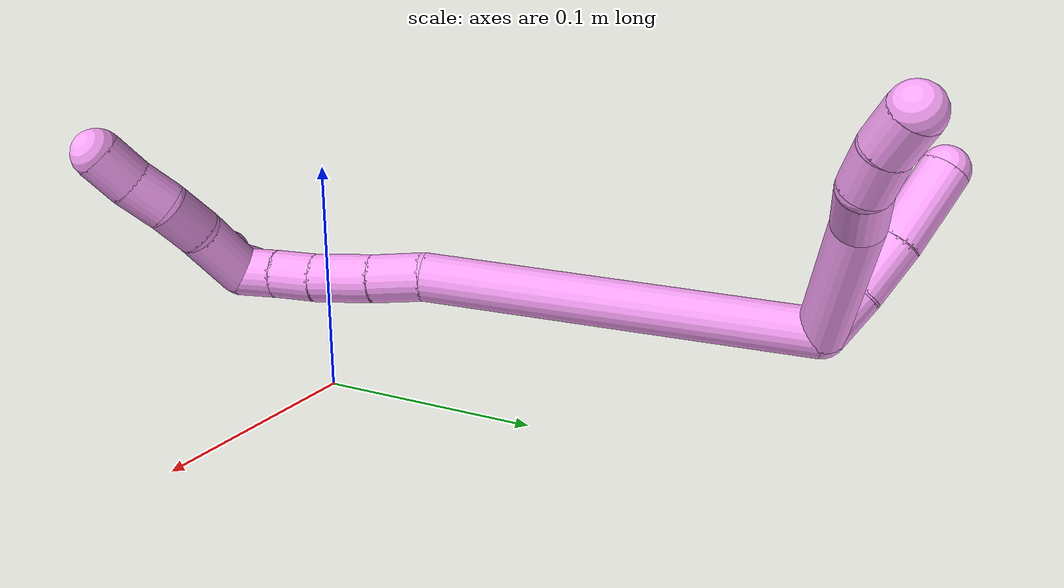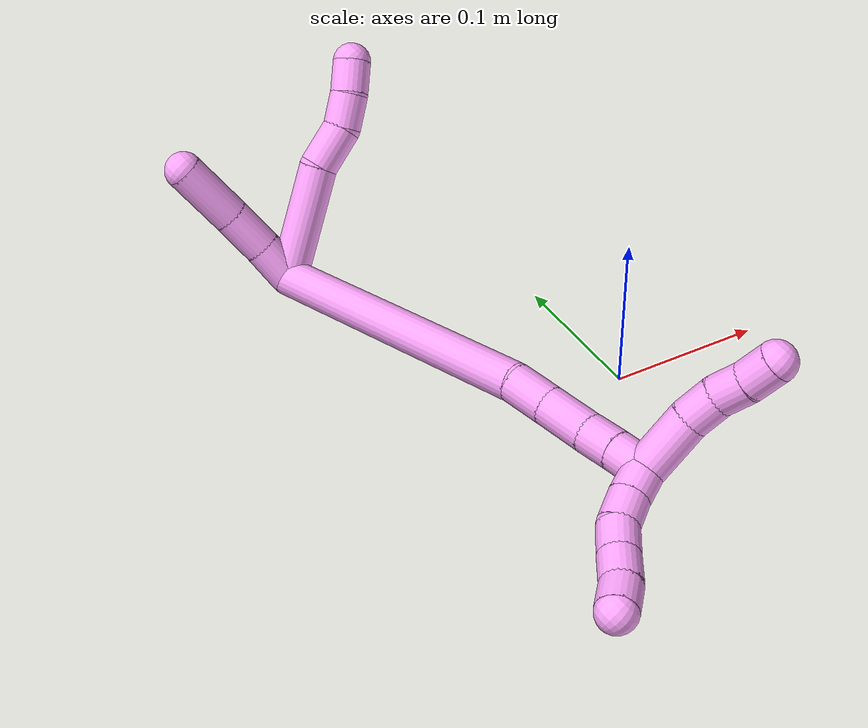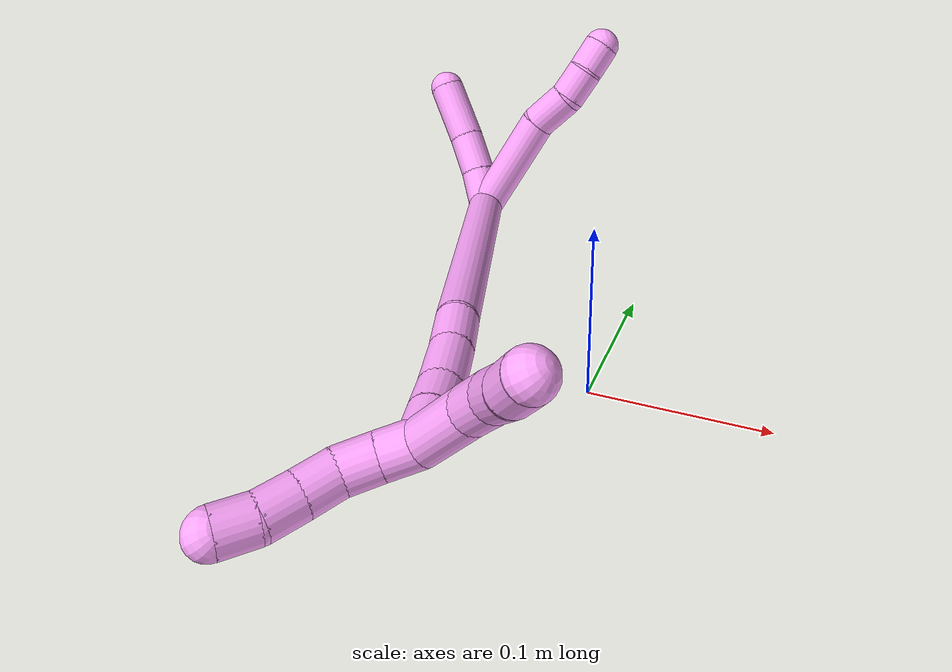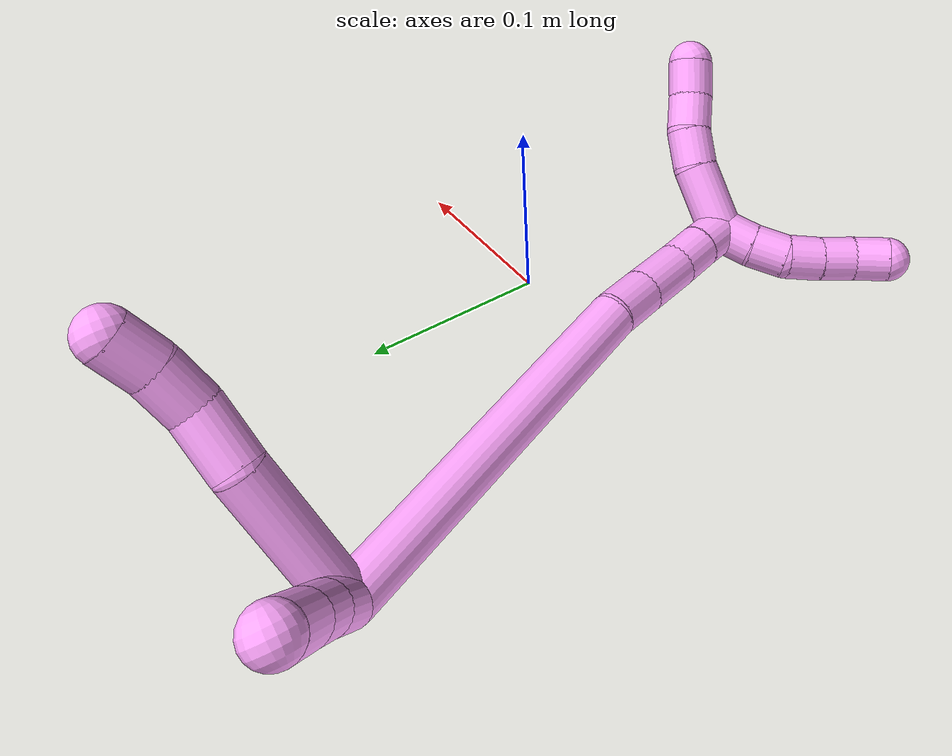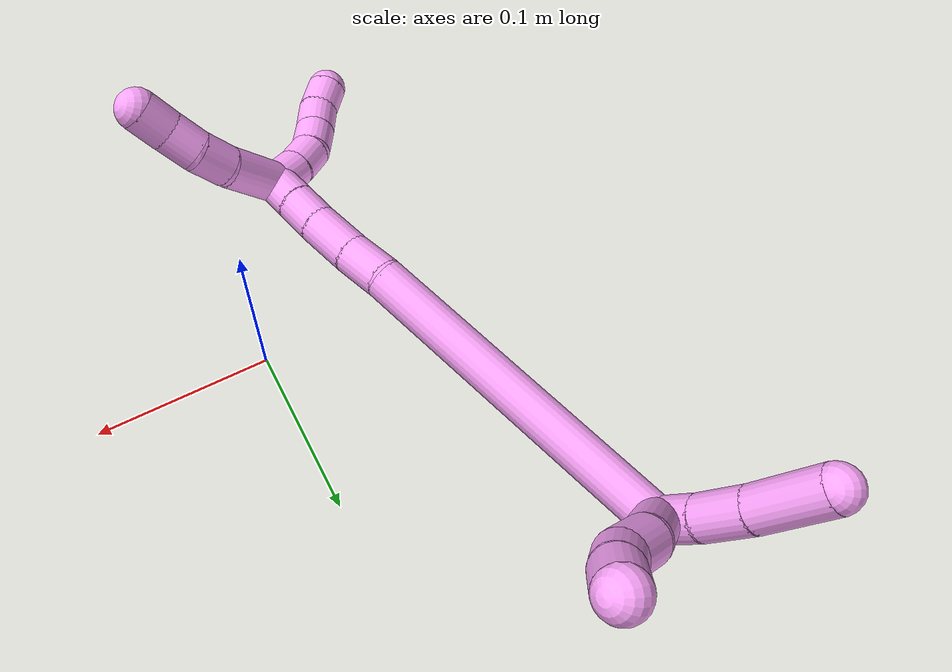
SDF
<sdf version="1.7">
 <world name="default">
  <model name="4">
   <static>0</static>
   <link name="4">
    <collision name="collision-cylinder-e_1_2_8">
     <pose>0.004316 0.016697 -0.033895 -2.68388 0.11374 -0.479412</pose>
     <geometry><cylinder><radius>0.0125</radius><length>0.07606</length></cylinder></geometry>
     <surface>
      <friction><ode><mu>1.16</mu><mu2>1.16</mu2><slip1>0</slip1><slip2>0</slip2></ode></friction>
      <contact><ode><kp>1e+06</kp><kd>1</kd><max_vel>0</max_vel><min_depth>0.001</min_depth></ode></contact>
     </surface>
    </collision>
    <visual name="visual-cylinder-e_1_2_8">
     <pose>0.004316 0.016697 -0.033895 -2.68388 0.11374 -0.479412</pose>
     <geometry><cylinder><radius>0.0125</radius><length>0.07606</length></cylinder></geometry>
     <material><ambient>1 0.65098 0.996078 1</ambient></material>
    </visual>
    <collision name="collision-cylinder-e_2_8_9">
     <pose>0.007742 0.036441 -0.082181 -2.93295 -0.060476 0.56246</pose>
     <geometry><cylinder><radius>0.0125</radius><length>0.029473</length></cylinder></geometry>
     <surface>
      <friction><ode><mu>1.16</mu><mu2>1.16</mu2><slip1>0</slip1><slip2>0</slip2></ode></friction>
      <contact><ode><kp>1e+06</kp><kd>1</kd><max_vel>0</max_vel><min_depth>0.001</min_depth></ode></contact>
     </surface>
    </collision>
    <visual name="visual-cylinder-e_2_8_9">
     <pose>0.007742 0.036441 -0.082181 -2.93295 -0.060476 0.56246</pose>
     <geometry><cylinder><radius>0.0125</radius><length>0.029473</length></cylinder></geometry>
     <material><ambient>1 0.65098 0.996078 1</ambient></material>
    </visual>
    <collision name="collision-cylinder-e_3_9_10">
     <pose>0.007158 0.045324 -0.106425 -2.60688 0.026744 -0.097563</pose>
     <geometry><cylinder><radius>0.0125</radius><length>0.022914</length></cylinder></geometry>
     <surface>
      <friction><ode><mu>1.16</mu><mu2>1.16</mu2><slip1>0</slip1><slip2>0</slip2></ode></friction>
      <contact><ode><kp>1e+06</kp><kd>1</kd><max_vel>0</max_vel><min_depth>0.001</min_depth></ode></contact>
     </surface>
    </collision>
    <visual name="visual-cylinder-e_3_9_10">
     <pose>0.007158 0.045324 -0.106425 -2.60688 0.026744 -0.097563</pose>
     <geometry><cylinder><radius>0.0125</radius><length>0.022914</length></cylinder></geometry>
     <material><ambient>1 0.65098 0.996078 1</ambient></material>
    </visual>
    <collision name="collision-cylinder-e_4_10_6">
     <pose>0.006957 0.057958 -0.124625 -2.45806 -0.047092 0.132215</pose>
     <geometry><cylinder><radius>0.0125</radius><length>0.021553</length></cylinder></geometry>
     <surface>
      <friction><ode><mu>1.16</mu><mu2>1.16</mu2><slip1>0</slip1><slip2>0</slip2></ode></friction>
      <contact><ode><kp>1e+06</kp><kd>1</kd><max_vel>0</max_vel><min_depth>0.001</min_depth></ode></contact>
     </surface>
    </collision>
    <visual name="visual-cylinder-e_4_10_6">
     <pose>0.006957 0.057958 -0.124625 -2.45806 -0.047092 0.132215</pose>
     <geometry><cylinder><radius>0.0125</radius><length>0.021553</length></cylinder></geometry>
     <material><ambient>1 0.65098 0.996078 1</ambient></material>
    </visual>
    <collision name="collision-cylinder-e_1_2_11">
     <pose>0.005242 0.01226 -0.001756 -1.71303 0.400408 -0.459826</pose>
     <geometry><cylinder><radius>0.0125</radius><length>0.026898</length></cylinder></geometry>
     <surface>
      <friction><ode><mu>1.16</mu><mu2>1.16</mu2><slip1>0</slip1><slip2>0</slip2></ode></friction>
      <contact><ode><kp>1e+06</kp><kd>1</kd><max_vel>0</max_vel><min_depth>0.001</min_depth></ode></contact>
     </surface>
    </collision>
    <visual name="visual-cylinder-e_1_2_11">
     <pose>0.005242 0.01226 -0.001756 -1.71303 0.400408 -0.459826</pose>
     <geometry><cylinder><radius>0.0125</radius><length>0.026898</length></cylinder></geometry>
     <material><ambient>1 0.65098 0.996078 1</ambient></material>
    </visual>
    <collision name="collision-cylinder-e_2_11_12">
     <pose>0.017452 0.037588 -0.004819 -1.67057 0.487754 -0.536702</pose>
     <geometry><cylinder><radius>0.0125</radius><length>0.029733</length></cylinder></geometry>
     <surface>
      <friction><ode><mu>1.16</mu><mu2>1.16</mu2><slip1>0</slip1><slip2>0</slip2></ode></friction>
      <contact><ode><kp>1e+06</kp><kd>1</kd><max_vel>0</max_vel><min_depth>0.001</min_depth></ode></contact>
     </surface>
    </collision>
    <visual name="visual-cylinder-e_2_11_12">
     <pose>0.017452 0.037588 -0.004819 -1.67057 0.487754 -0.536702</pose>
     <geometry><cylinder><radius>0.0125</radius><length>0.029733</length></cylinder></geometry>
     <material><ambient>1 0.65098 0.996078 1</ambient></material>
    </visual>
    <collision name="collision-cylinder-e_3_12_5">
     <pose>0.035935 0.068942 -0.007918 -1.66837 0.559875 -0.613958</pose>
     <geometry><cylinder><radius>0.0125</radius><length>0.043369</length></cylinder></geometry>
     <surface>
      <friction><ode><mu>1.16</mu><mu2>1.16</mu2><slip1>0</slip1><slip2>0</slip2></ode></friction>
      <contact><ode><kp>1e+06</kp><kd>1</kd><max_vel>0</max_vel><min_depth>0.001</min_depth></ode></contact>
     </surface>
    </collision>
    <visual name="visual-cylinder-e_3_12_5">
     <pose>0.035935 0.068942 -0.007918 -1.66837 0.559875 -0.613958</pose>
     <geometry><cylinder><radius>0.0125</radius><length>0.043369</length></cylinder></geometry>
     <material><ambient>1 0.65098 0.996078 1</ambient></material>
    </visual>
    <collision name="collision-cylinder-e_1_2_13">
     <pose>0.044442 -0.082792 -0.032325 1.94303 0.463674 0.665525</pose>
     <geometry><cylinder><radius>0.0125</radius><length>0.198741</length></cylinder></geometry>
     <surface>
      <friction><ode><mu>1.16</mu><mu2>1.16</mu2><slip1>0</slip1><slip2>0</slip2></ode></friction>
      <contact><ode><kp>1e+06</kp><kd>1</kd><max_vel>0</max_vel><min_depth>0.001</min_depth></ode></contact>
     </surface>
    </collision>
    <visual name="visual-cylinder-e_1_2_13">
     <pose>0.044442 -0.082792 -0.032325 1.94303 0.463674 0.665525</pose>
     <geometry><cylinder><radius>0.0125</radius><length>0.198741</length></cylinder></geometry>
     <material><ambient>1 0.65098 0.996078 1</ambient></material>
    </visual>
    <collision name="collision-cylinder-e_2_13_14">
     <pose>0.093561 -0.178013 -0.067271 1.77856 0.352771 0.432584</pose>
     <geometry><cylinder><radius>0.0125</radius><length>0.027072</length></cylinder></geometry>
     <surface>
      <friction><ode><mu>1.16</mu><mu2>1.16</mu2><slip1>0</slip1><slip2>0</slip2></ode></friction>
      <contact><ode><kp>1e+06</kp><kd>1</kd><max_vel>0</max_vel><min_depth>0.001</min_depth></ode></contact>
     </surface>
    </collision>
    <visual name="visual-cylinder-e_2_13_14">
     <pose>0.093561 -0.178013 -0.067271 1.77856 0.352771 0.432584</pose>
     <geometry><cylinder><radius>0.0125</radius><length>0.027072</length></cylinder></geometry>
     <material><ambient>1 0.65098 0.996078 1</ambient></material>
    </visual>
    <collision name="collision-cylinder-e_3_14_15">
     <pose>0.104535 -0.204606 -0.072927 1.78195 0.410058 0.503581</pose>
     <geometry><cylinder><radius>0.0125</radius><length>0.03159</length></cylinder></geometry>
     <surface>
      <friction><ode><mu>1.16</mu><mu2>1.16</mu2><slip1>0</slip1><slip2>0</slip2></ode></friction>
      <contact><ode><kp>1e+06</kp><kd>1</kd><max_vel>0</max_vel><min_depth>0.001</min_depth></ode></contact>
     </surface>
    </collision>
    <visual name="visual-cylinder-e_3_14_15">
     <pose>0.104535 -0.204606 -0.072927 1.78195 0.410058 0.503581</pose>
     <geometry><cylinder><radius>0.0125</radius><length>0.03159</length></cylinder></geometry>
     <material><ambient>1 0.65098 0.996078 1</ambient></material>
    </visual>
    <collision name="collision-cylinder-e_4_15_16">
     <pose>0.115846 -0.228086 -0.078385 1.82519 0.480212 0.613289</pose>
     <geometry><cylinder><radius>0.0125</radius><length>0.021706</length></cylinder></geometry>
     <surface>
      <friction><ode><mu>1.16</mu><mu2>1.16</mu2><slip1>0</slip1><slip2>0</slip2></ode></friction>
      <contact><ode><kp>1e+06</kp><kd>1</kd><max_vel>0</max_vel><min_depth>0.001</min_depth></ode></contact>
     </surface>
    </collision>
    <visual name="visual-cylinder-e_4_15_16">
     <pose>0.115846 -0.228086 -0.078385 1.82519 0.480212 0.613289</pose>
     <geometry><cylinder><radius>0.0125</radius><length>0.021706</length></cylinder></geometry>
     <material><ambient>1 0.65098 0.996078 1</ambient></material>
    </visual>
    <collision name="collision-cylinder-e_5_16_1">
     <pose>0.125513 -0.246533 -0.082823 1.78806 0.46174 0.569327</pose>
     <geometry><cylinder><radius>0.0125</radius><length>0.02089</length></cylinder></geometry>
     <surface>
      <friction><ode><mu>1.16</mu><mu2>1.16</mu2><slip1>0</slip1><slip2>0</slip2></ode></friction>
      <contact><ode><kp>1e+06</kp><kd>1</kd><max_vel>0</max_vel><min_depth>0.001</min_depth></ode></contact>
     </surface>
    </collision>
    <visual name="visual-cylinder-e_5_16_1">
     <pose>0.125513 -0.246533 -0.082823 1.78806 0.46174 0.569327</pose>
     <geometry><cylinder><radius>0.0125</radius><length>0.02089</length></cylinder></geometry>
     <material><ambient>1 0.65098 0.996078 1</ambient></material>
    </visual>
    <collision name="collision-cylinder-e_1_1_17">
     <pose>0.135828 -0.257932 -0.076915 0.278681 0.601879 0.087002</pose>
     <geometry><cylinder><radius>0.0125</radius><length>0.02</length></cylinder></geometry>
     <surface>
      <friction><ode><mu>1.16</mu><mu2>1.16</mu2><slip1>0</slip1><slip2>0</slip2></ode></friction>
      <contact><ode><kp>1e+06</kp><kd>1</kd><max_vel>0</max_vel><min_depth>0.001</min_depth></ode></contact>
     </surface>
    </collision>
    <visual name="visual-cylinder-e_1_1_17">
     <pose>0.135828 -0.257932 -0.076915 0.278681 0.601879 0.087002</pose>
     <geometry><cylinder><radius>0.0125</radius><length>0.02</length></cylinder></geometry>
     <material><ambient>1 0.65098 0.996078 1</ambient></material>
    </visual>
    <collision name="collision-cylinder-e_2_17_18">
     <pose>0.147953 -0.263252 -0.061996 0.411514 0.702741 0.152722</pose>
     <geometry><cylinder><radius>0.0125</radius><length>0.02</length></cylinder></geometry>
     <surface>
      <friction><ode><mu>1.16</mu><mu2>1.16</mu2><slip1>0</slip1><slip2>0</slip2></ode></friction>
      <contact><ode><kp>1e+06</kp><kd>1</kd><max_vel>0</max_vel><min_depth>0.001</min_depth></ode></contact>
     </surface>
    </collision>
    <visual name="visual-cylinder-e_2_17_18">
     <pose>0.147953 -0.263252 -0.061996 0.411514 0.702741 0.152722</pose>
     <geometry><cylinder><radius>0.0125</radius><length>0.02</length></cylinder></geometry>
     <material><ambient>1 0.65098 0.996078 1</ambient></material>
    </visual>
    <collision name="collision-cylinder-e_3_18_19">
     <pose>0.161291 -0.271875 -0.050343 0.874251 0.758008 0.367982</pose>
     <geometry><cylinder><radius>0.0125</radius><length>0.02</length></cylinder></geometry>
     <surface>
      <friction><ode><mu>1.16</mu><mu2>1.16</mu2><slip1>0</slip1><slip2>0</slip2></ode></friction>
      <contact><ode><kp>1e+06</kp><kd>1</kd><max_vel>0</max_vel><min_depth>0.001</min_depth></ode></contact>
     </surface>
    </collision>
    <visual name="visual-cylinder-e_3_18_19">
     <pose>0.161291 -0.271875 -0.050343 0.874251 0.758008 0.367982</pose>
     <geometry><cylinder><radius>0.0125</radius><length>0.02</length></cylinder></geometry>
     <material><ambient>1 0.65098 0.996078 1</ambient></material>
    </visual>
    <collision name="collision-cylinder-e_4_19_20">
     <pose>0.175467 -0.282961 -0.041651 0.939393 0.818522 0.433417</pose>
     <geometry><cylinder><radius>0.0125</radius><length>0.02</length></cylinder></geometry>
     <surface>
      <friction><ode><mu>1.16</mu><mu2>1.16</mu2><slip1>0</slip1><slip2>0</slip2></ode></friction>
      <contact><ode><kp>1e+06</kp><kd>1</kd><max_vel>0</max_vel><min_depth>0.001</min_depth></ode></contact>
     </surface>
    </collision>
    <visual name="visual-cylinder-e_4_19_20">
     <pose>0.175467 -0.282961 -0.041651 0.939393 0.818522 0.433417</pose>
     <geometry><cylinder><radius>0.0125</radius><length>0.02</length></cylinder></geometry>
     <material><ambient>1 0.65098 0.996078 1</ambient></material>
    </visual>
    <collision name="collision-cylinder-e_5_20_4">
     <pose>0.190914 -0.292022 -0.033027 0.657661 0.95204 0.348275</pose>
     <geometry><cylinder><radius>0.0125</radius><length>0.02</length></cylinder></geometry>
     <surface>
      <friction><ode><mu>1.16</mu><mu2>1.16</mu2><slip1>0</slip1><slip2>0</slip2></ode></friction>
      <contact><ode><kp>1e+06</kp><kd>1</kd><max_vel>0</max_vel><min_depth>0.001</min_depth></ode></contact>
     </surface>
    </collision>
    <visual name="visual-cylinder-e_5_20_4">
     <pose>0.190914 -0.292022 -0.033027 0.657661 0.95204 0.348275</pose>
     <geometry><cylinder><radius>0.0125</radius><length>0.02</length></cylinder></geometry>
     <material><ambient>1 0.65098 0.996078 1</ambient></material>
    </visual>
    <collision name="collision-cylinder-e_1_1_21">
     <pose>0.131913 -0.254918 -0.103901 -3.10243 0.091308 -2.33175</pose>
     <geometry><cylinder><radius>0.0125</radius><length>0.038312</length></cylinder></geometry>
     <surface>
      <friction><ode><mu>1.16</mu><mu2>1.16</mu2><slip1>0</slip1><slip2>0</slip2></ode></friction>
      <contact><ode><kp>1e+06</kp><kd>1</kd><max_vel>0</max_vel><min_depth>0.001</min_depth></ode></contact>
     </surface>
    </collision>
    <visual name="visual-cylinder-e_1_1_21">
     <pose>0.131913 -0.254918 -0.103901 -3.10243 0.091308 -2.33175</pose>
     <geometry><cylinder><radius>0.0125</radius><length>0.038312</length></cylinder></geometry>
     <material><ambient>1 0.65098 0.996078 1</ambient></material>
    </visual>
    <collision name="collision-cylinder-e_2_21_22">
     <pose>0.136236 -0.25552 -0.13329 3.01168 0.242536 2.16102</pose>
     <geometry><cylinder><radius>0.0125</radius><length>0.021459</length></cylinder></geometry>
     <surface>
      <friction><ode><mu>1.16</mu><mu2>1.16</mu2><slip1>0</slip1><slip2>0</slip2></ode></friction>
      <contact><ode><kp>1e+06</kp><kd>1</kd><max_vel>0</max_vel><min_depth>0.001</min_depth></ode></contact>
     </surface>
    </collision>
    <visual name="visual-cylinder-e_2_21_22">
     <pose>0.136236 -0.25552 -0.13329 3.01168 0.242536 2.16102</pose>
     <geometry><cylinder><radius>0.0125</radius><length>0.021459</length></cylinder></geometry>
     <material><ambient>1 0.65098 0.996078 1</ambient></material>
    </visual>
    <collision name="collision-cylinder-e_3_22_23">
     <pose>0.142661 -0.259961 -0.152334 2.80081 0.394279 1.71939</pose>
     <geometry><cylinder><radius>0.0125</radius><length>0.020033</length></cylinder></geometry>
     <surface>
      <friction><ode><mu>1.16</mu><mu2>1.16</mu2><slip1>0</slip1><slip2>0</slip2></ode></friction>
      <contact><ode><kp>1e+06</kp><kd>1</kd><max_vel>0</max_vel><min_depth>0.001</min_depth></ode></contact>
     </surface>
    </collision>
    <visual name="visual-cylinder-e_3_22_23">
     <pose>0.142661 -0.259961 -0.152334 2.80081 0.394279 1.71939</pose>
     <geometry><cylinder><radius>0.0125</radius><length>0.020033</length></cylinder></geometry>
     <material><ambient>1 0.65098 0.996078 1</ambient></material>
    </visual>
    <collision name="collision-cylinder-e_4_23_3">
     <pose>0.150468 -0.264812 -0.170172 2.95097 0.402902 2.26593</pose>
     <geometry><cylinder><radius>0.0125</radius><length>0.020195</length></cylinder></geometry>
     <surface>
      <friction><ode><mu>1.16</mu><mu2>1.16</mu2><slip1>0</slip1><slip2>0</slip2></ode></friction>
      <contact><ode><kp>1e+06</kp><kd>1</kd><max_vel>0</max_vel><min_depth>0.001</min_depth></ode></contact>
     </surface>
    </collision>
    <visual name="visual-cylinder-e_4_23_3">
     <pose>0.150468 -0.264812 -0.170172 2.95097 0.402902 2.26593</pose>
     <geometry><cylinder><radius>0.0125</radius><length>0.020195</length></cylinder></geometry>
     <material><ambient>1 0.65098 0.996078 1</ambient></material>
    </visual>
    <collision name="collision-sphere-3">
     <pose>0.154427 -0.266572 -0.179292 0 -0 0</pose>
     <geometry><sphere><radius>0.0125</radius></sphere></geometry>
     <surface>
      <friction><ode><mu>1.16</mu><mu2>1.16</mu2><slip1>0</slip1><slip2>0</slip2></ode></friction>
      <contact><ode><kp>1e+06</kp><kd>1</kd><max_vel>0</max_vel><min_depth>0.001</min_depth></ode></contact>
     </surface>
    </collision>
    <visual name="visual-sphere-3">
     <pose>0.154427 -0.266572 -0.179292 0 -0 0</pose>
     <geometry><sphere><radius>0.0125</radius></sphere></geometry>
     <material><ambient>1 0.65098 0.996078 1</ambient></material>
    </visual>
    <collision name="collision-sphere-23">
     <pose>0.146509 -0.263052 -0.161051 0 -0 0</pose>
     <geometry><sphere><radius>0.0125</radius></sphere></geometry>
     <surface>
      <friction><ode><mu>1.16</mu><mu2>1.16</mu2><slip1>0</slip1><slip2>0</slip2></ode></friction>
      <contact><ode><kp>1e+06</kp><kd>1</kd><max_vel>0</max_vel><min_depth>0.001</min_depth></ode></contact>
     </surface>
    </collision>
    <visual name="visual-sphere-23">
     <pose>0.146509 -0.263052 -0.161051 0 -0 0</pose>
     <geometry><sphere><radius>0.0125</radius></sphere></geometry>
     <material><ambient>1 0.65098 0.996078 1</ambient></material>
    </visual>
    <collision name="collision-sphere-22">
     <pose>0.138813 -0.25687 -0.143618 0 -0 0</pose>
     <geometry><sphere><radius>0.0125</radius></sphere></geometry>
     <surface>
      <friction><ode><mu>1.16</mu><mu2>1.16</mu2><slip1>0</slip1><slip2>0</slip2></ode></friction>
      <contact><ode><kp>1e+06</kp><kd>1</kd><max_vel>0</max_vel><min_depth>0.001</min_depth></ode></contact>
     </surface>
    </collision>
    <visual name="visual-sphere-22">
     <pose>0.138813 -0.25687 -0.143618 0 -0 0</pose>
     <geometry><sphere><radius>0.0125</radius></sphere></geometry>
     <material><ambient>1 0.65098 0.996078 1</ambient></material>
    </visual>
    <collision name="collision-sphere-21">
     <pose>0.133659 -0.254171 -0.122963 0 -0 0</pose>
     <geometry><sphere><radius>0.0125</radius></sphere></geometry>
     <surface>
      <friction><ode><mu>1.16</mu><mu2>1.16</mu2><slip1>0</slip1><slip2>0</slip2></ode></friction>
      <contact><ode><kp>1e+06</kp><kd>1</kd><max_vel>0</max_vel><min_depth>0.001</min_depth></ode></contact>
     </surface>
    </collision>
    <visual name="visual-sphere-21">
     <pose>0.133659 -0.254171 -0.122963 0 -0 0</pose>
     <geometry><sphere><radius>0.0125</radius></sphere></geometry>
     <material><ambient>1 0.65098 0.996078 1</ambient></material>
    </visual>
    <collision name="collision-sphere-4">
     <pose>0.19906 -0.295567 -0.028436 0 -0 0</pose>
     <geometry><sphere><radius>0.0125</radius></sphere></geometry>
     <surface>
      <friction><ode><mu>1.16</mu><mu2>1.16</mu2><slip1>0</slip1><slip2>0</slip2></ode></friction>
      <contact><ode><kp>1e+06</kp><kd>1</kd><max_vel>0</max_vel><min_depth>0.001</min_depth></ode></contact>
     </surface>
    </collision>
    <visual name="visual-sphere-4">
     <pose>0.19906 -0.295567 -0.028436 0 -0 0</pose>
     <geometry><sphere><radius>0.0125</radius></sphere></geometry>
     <material><ambient>1 0.65098 0.996078 1</ambient></material>
    </visual>
    <collision name="collision-sphere-20">
     <pose>0.182768 -0.288476 -0.037617 0 -0 0</pose>
     <geometry><sphere><radius>0.0125</radius></sphere></geometry>
     <surface>
      <friction><ode><mu>1.16</mu><mu2>1.16</mu2><slip1>0</slip1><slip2>0</slip2></ode></friction>
      <contact><ode><kp>1e+06</kp><kd>1</kd><max_vel>0</max_vel><min_depth>0.001</min_depth></ode></contact>
     </surface>
    </collision>
    <visual name="visual-sphere-20">
     <pose>0.182768 -0.288476 -0.037617 0 -0 0</pose>
     <geometry><sphere><radius>0.0125</radius></sphere></geometry>
     <material><ambient>1 0.65098 0.996078 1</ambient></material>
    </visual>
    <collision name="collision-sphere-11">
     <pose>0.010485 0.02452 -0.003511 0 -0 0</pose>
     <geometry><sphere><radius>0.0125</radius></sphere></geometry>
     <surface>
      <friction><ode><mu>1.16</mu><mu2>1.16</mu2><slip1>0</slip1><slip2>0</slip2></ode></friction>
      <contact><ode><kp>1e+06</kp><kd>1</kd><max_vel>0</max_vel><min_depth>0.001</min_depth></ode></contact>
     </surface>
    </collision>
    <visual name="visual-sphere-11">
     <pose>0.010485 0.02452 -0.003511 0 -0 0</pose>
     <geometry><sphere><radius>0.0125</radius></sphere></geometry>
     <material><ambient>1 0.65098 0.996078 1</ambient></material>
    </visual>
    <collision name="collision-sphere-6">
     <pose>0.006449 0.064757 -0.132972 0 -0 0</pose>
     <geometry><sphere><radius>0.0125</radius></sphere></geometry>
     <surface>
      <friction><ode><mu>1.16</mu><mu2>1.16</mu2><slip1>0</slip1><slip2>0</slip2></ode></friction>
      <contact><ode><kp>1e+06</kp><kd>1</kd><max_vel>0</max_vel><min_depth>0.001</min_depth></ode></contact>
     </surface>
    </collision>
    <visual name="visual-sphere-6">
     <pose>0.006449 0.064757 -0.132972 0 -0 0</pose>
     <geometry><sphere><radius>0.0125</radius></sphere></geometry>
     <material><ambient>1 0.65098 0.996078 1</ambient></material>
    </visual>
    <collision name="collision-sphere-10">
     <pose>0.007464 0.05116 -0.116279 0 -0 0</pose>
     <geometry><sphere><radius>0.0125</radius></sphere></geometry>
     <surface>
      <friction><ode><mu>1.16</mu><mu2>1.16</mu2><slip1>0</slip1><slip2>0</slip2></ode></friction>
      <contact><ode><kp>1e+06</kp><kd>1</kd><max_vel>0</max_vel><min_depth>0.001</min_depth></ode></contact>
     </surface>
    </collision>
    <visual name="visual-sphere-10">
     <pose>0.007464 0.05116 -0.116279 0 -0 0</pose>
     <geometry><sphere><radius>0.0125</radius></sphere></geometry>
     <material><ambient>1 0.65098 0.996078 1</ambient></material>
    </visual>
    <collision name="collision-sphere-9">
     <pose>0.006851 0.039487 -0.096571 0 -0 0</pose>
     <geometry><sphere><radius>0.0125</radius></sphere></geometry>
     <surface>
      <friction><ode><mu>1.16</mu><mu2>1.16</mu2><slip1>0</slip1><slip2>0</slip2></ode></friction>
      <contact><ode><kp>1e+06</kp><kd>1</kd><max_vel>0</max_vel><min_depth>0.001</min_depth></ode></contact>
     </surface>
    </collision>
    <visual name="visual-sphere-9">
     <pose>0.006851 0.039487 -0.096571 0 -0 0</pose>
     <geometry><sphere><radius>0.0125</radius></sphere></geometry>
     <material><ambient>1 0.65098 0.996078 1</ambient></material>
    </visual>
    <collision name="collision-sphere-2">
     <geometry><sphere><radius>0.0125</radius></sphere></geometry>
     <surface>
      <friction><ode><mu>1.16</mu><mu2>1.16</mu2><slip1>0</slip1><slip2>0</slip2></ode></friction>
      <contact><ode><kp>1e+06</kp><kd>1</kd><max_vel>0</max_vel><min_depth>0.001</min_depth></ode></contact>
     </surface>
    </collision>
    <visual name="visual-sphere-2">
     <geometry><sphere><radius>0.0125</radius></sphere></geometry>
     <material><ambient>1 0.65098 0.996078 1</ambient></material>
    </visual>
    <collision name="collision-sphere-19">
     <pose>0.168166 -0.277445 -0.045684 0 -0 0</pose>
     <geometry><sphere><radius>0.0125</radius></sphere></geometry>
     <surface>
      <friction><ode><mu>1.16</mu><mu2>1.16</mu2><slip1>0</slip1><slip2>0</slip2></ode></friction>
      <contact><ode><kp>1e+06</kp><kd>1</kd><max_vel>0</max_vel><min_depth>0.001</min_depth></ode></contact>
     </surface>
    </collision>
    <visual name="visual-sphere-19">
     <pose>0.168166 -0.277445 -0.045684 0 -0 0</pose>
     <geometry><sphere><radius>0.0125</radius></sphere></geometry>
     <material><ambient>1 0.65098 0.996078 1</ambient></material>
    </visual>
    <collision name="collision-sphere-8">
     <pose>0.008632 0.033394 -0.06779 0 -0 0</pose>
     <geometry><sphere><radius>0.0125</radius></sphere></geometry>
     <surface>
      <friction><ode><mu>1.16</mu><mu2>1.16</mu2><slip1>0</slip1><slip2>0</slip2></ode></friction>
      <contact><ode><kp>1e+06</kp><kd>1</kd><max_vel>0</max_vel><min_depth>0.001</min_depth></ode></contact>
     </surface>
    </collision>
    <visual name="visual-sphere-8">
     <pose>0.008632 0.033394 -0.06779 0 -0 0</pose>
     <geometry><sphere><radius>0.0125</radius></sphere></geometry>
     <material><ambient>1 0.65098 0.996078 1</ambient></material>
    </visual>
    <collision name="collision-sphere-12">
     <pose>0.024419 0.050655 -0.006128 0 -0 0</pose>
     <geometry><sphere><radius>0.0125</radius></sphere></geometry>
     <surface>
      <friction><ode><mu>1.16</mu><mu2>1.16</mu2><slip1>0</slip1><slip2>0</slip2></ode></friction>
      <contact><ode><kp>1e+06</kp><kd>1</kd><max_vel>0</max_vel><min_depth>0.001</min_depth></ode></contact>
     </surface>
    </collision>
    <visual name="visual-sphere-12">
     <pose>0.024419 0.050655 -0.006128 0 -0 0</pose>
     <geometry><sphere><radius>0.0125</radius></sphere></geometry>
     <material><ambient>1 0.65098 0.996078 1</ambient></material>
    </visual>
    <collision name="collision-sphere-5">
     <pose>0.047451 0.087228 -0.009707 0 -0 0</pose>
     <geometry><sphere><radius>0.0125</radius></sphere></geometry>
     <surface>
      <friction><ode><mu>1.16</mu><mu2>1.16</mu2><slip1>0</slip1><slip2>0</slip2></ode></friction>
      <contact><ode><kp>1e+06</kp><kd>1</kd><max_vel>0</max_vel><min_depth>0.001</min_depth></ode></contact>
     </surface>
    </collision>
    <visual name="visual-sphere-5">
     <pose>0.047451 0.087228 -0.009707 0 -0 0</pose>
     <geometry><sphere><radius>0.0125</radius></sphere></geometry>
     <material><ambient>1 0.65098 0.996078 1</ambient></material>
    </visual>
    <collision name="collision-sphere-13">
     <pose>0.088885 -0.165584 -0.06465 0 -0 0</pose>
     <geometry><sphere><radius>0.0125</radius></sphere></geometry>
     <surface>
      <friction><ode><mu>1.16</mu><mu2>1.16</mu2><slip1>0</slip1><slip2>0</slip2></ode></friction>
      <contact><ode><kp>1e+06</kp><kd>1</kd><max_vel>0</max_vel><min_depth>0.001</min_depth></ode></contact>
     </surface>
    </collision>
    <visual name="visual-sphere-13">
     <pose>0.088885 -0.165584 -0.06465 0 -0 0</pose>
     <geometry><sphere><radius>0.0125</radius></sphere></geometry>
     <material><ambient>1 0.65098 0.996078 1</ambient></material>
    </visual>
    <collision name="collision-sphere-14">
     <pose>0.098238 -0.190442 -0.069891 0 -0 0</pose>
     <geometry><sphere><radius>0.0125</radius></sphere></geometry>
     <surface>
      <friction><ode><mu>1.16</mu><mu2>1.16</mu2><slip1>0</slip1><slip2>0</slip2></ode></friction>
      <contact><ode><kp>1e+06</kp><kd>1</kd><max_vel>0</max_vel><min_depth>0.001</min_depth></ode></contact>
     </surface>
    </collision>
    <visual name="visual-sphere-14">
     <pose>0.098238 -0.190442 -0.069891 0 -0 0</pose>
     <geometry><sphere><radius>0.0125</radius></sphere></geometry>
     <material><ambient>1 0.65098 0.996078 1</ambient></material>
    </visual>
    <collision name="collision-sphere-15">
     <pose>0.110832 -0.21877 -0.075963 0 -0 0</pose>
     <geometry><sphere><radius>0.0125</radius></sphere></geometry>
     <surface>
      <friction><ode><mu>1.16</mu><mu2>1.16</mu2><slip1>0</slip1><slip2>0</slip2></ode></friction>
      <contact><ode><kp>1e+06</kp><kd>1</kd><max_vel>0</max_vel><min_depth>0.001</min_depth></ode></contact>
     </surface>
    </collision>
    <visual name="visual-sphere-15">
     <pose>0.110832 -0.21877 -0.075963 0 -0 0</pose>
     <geometry><sphere><radius>0.0125</radius></sphere></geometry>
     <material><ambient>1 0.65098 0.996078 1</ambient></material>
    </visual>
    <collision name="collision-sphere-16">
     <pose>0.120859 -0.237402 -0.080808 0 -0 0</pose>
     <geometry><sphere><radius>0.0125</radius></sphere></geometry>
     <surface>
      <friction><ode><mu>1.16</mu><mu2>1.16</mu2><slip1>0</slip1><slip2>0</slip2></ode></friction>
      <contact><ode><kp>1e+06</kp><kd>1</kd><max_vel>0</max_vel><min_depth>0.001</min_depth></ode></contact>
     </surface>
    </collision>
    <visual name="visual-sphere-16">
     <pose>0.120859 -0.237402 -0.080808 0 -0 0</pose>
     <geometry><sphere><radius>0.0125</radius></sphere></geometry>
     <material><ambient>1 0.65098 0.996078 1</ambient></material>
    </visual>
    <collision name="collision-sphere-1">
     <pose>0.130166 -0.255665 -0.084839 0 -0 0</pose>
     <geometry><sphere><radius>0.0125</radius></sphere></geometry>
     <surface>
      <friction><ode><mu>1.16</mu><mu2>1.16</mu2><slip1>0</slip1><slip2>0</slip2></ode></friction>
      <contact><ode><kp>1e+06</kp><kd>1</kd><max_vel>0</max_vel><min_depth>0.001</min_depth></ode></contact>
     </surface>
    </collision>
    <visual name="visual-sphere-1">
     <pose>0.130166 -0.255665 -0.084839 0 -0 0</pose>
     <geometry><sphere><radius>0.0125</radius></sphere></geometry>
     <material><ambient>1 0.65098 0.996078 1</ambient></material>
    </visual>
    <collision name="collision-sphere-18">
     <pose>0.154416 -0.266304 -0.055002 0 -0 0</pose>
     <geometry><sphere><radius>0.0125</radius></sphere></geometry>
     <surface>
      <friction><ode><mu>1.16</mu><mu2>1.16</mu2><slip1>0</slip1><slip2>0</slip2></ode></friction>
      <contact><ode><kp>1e+06</kp><kd>1</kd><max_vel>0</max_vel><min_depth>0.001</min_depth></ode></contact>
     </surface>
    </collision>
    <visual name="visual-sphere-18">
     <pose>0.154416 -0.266304 -0.055002 0 -0 0</pose>
     <geometry><sphere><radius>0.0125</radius></sphere></geometry>
     <material><ambient>1 0.65098 0.996078 1</ambient></material>
    </visual>
    <collision name="collision-sphere-17">
     <pose>0.14149 -0.2602 -0.06899 0 -0 0</pose>
     <geometry><sphere><radius>0.0125</radius></sphere></geometry>
     <surface>
      <friction><ode><mu>1.16</mu><mu2>1.16</mu2><slip1>0</slip1><slip2>0</slip2></ode></friction>
      <contact><ode><kp>1e+06</kp><kd>1</kd><max_vel>0</max_vel><min_depth>0.001</min_depth></ode></contact>
     </surface>
    </collision>
    <visual name="visual-sphere-17">
     <pose>0.14149 -0.2602 -0.06899 0 -0 0</pose>
     <geometry><sphere><radius>0.0125</radius></sphere></geometry>
     <material><ambient>1 0.65098 0.996078 1</ambient></material>
    </visual>
    <inertial>
     <pose>0.070662 -0.109247 -0.057664 0 -0 0</pose>
     <mass>0.75</mass>
     <inertia>
      <ixx>0.000893</ixx>
      <ixy>0</ixy>
      <ixz>0</ixz>
      <iyy>0.000296</iyy>
      <iyz>0</iyz>
      <izz>0.000192</izz>
     </inertia>
    </inertial>
   </link>
   <pose>-0.139197 0.187227 0.011493 2.51744 -0.650844 -2.30945</pose>
  </model>
 </world>
</sdf>
